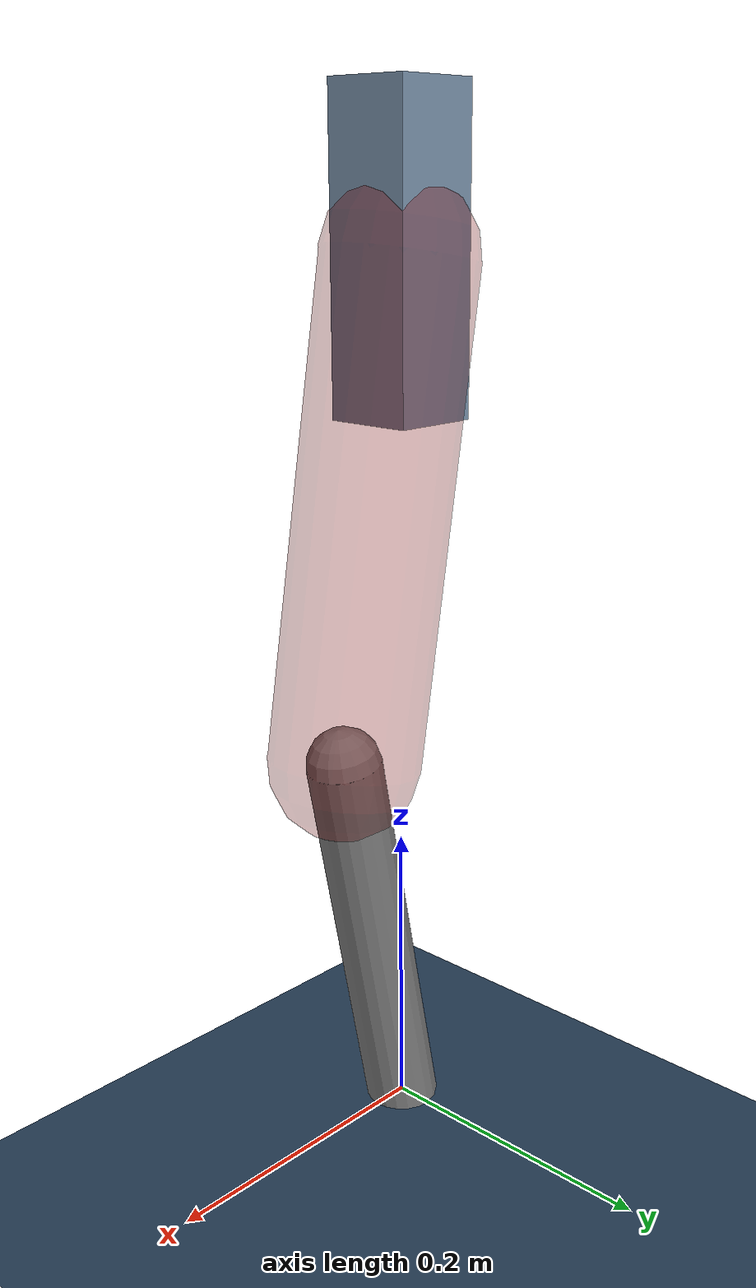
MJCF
<mujoco model="Hopper2D">
	<compiler inertiafromgeom="true" angle="radian" />
	<option timestep="0.001" integrator="implicit" cone="elliptic" solver="Newton" tolerance="1e-10" />

	<default>
		<geom contype="1" conaffinity="1" condim="3" friction="2 0.005 0.0001" solref="0.005 1" />
		<joint limited="true" damping="0.1" />
	</default>

	<asset>
		<texture name="skybox" type="skybox" builtin="gradient" rgb1=".4 .6 .8" rgb2="0 0 0" width="800" height="800" />
		<texture name="grid" type="2d" builtin="checker" rgb1=".1 .2 .3" rgb2=".2 .3 .4" width="300" height="300" mark="edge" markrgb=".2 .3 .4" />
		<material name="ground" texture="grid" texrepeat="1 1" texuniform="true" reflectance="0.1" />
		<material name="leg" rgba="0.5 0.6 0.7 1" />
	</asset>

	<worldbody>

		<geom name="floor" type="plane" size="5 5 0.25" material="ground" />

		<light directional="false" diffuse="0.8 0.8 0.8" specular="0.3 0.3 0.3" pos="0 0 2" dir="0 0 -1" />
		<light mode="targetbodycom" target="base" directional="false" diffuse="0.8 0.8 0.8" specular="0.3 0.3 0.3" pos="0 0 2" dir="0 0 -1" />

		<camera name="fixed" pos="0 -2 1" xyaxes="1 0 0 0 0 1" />
		<camera name="tracking" mode="trackcom" pos="0 -3 1" />

		<body name="root" pos="0 0 0.5858794527952029">
			<joint name="slide_x" type="slide" axis="1 0 0" range="-100 100" />
			<joint name="slide_z" type="slide" axis="0 0 1" range="0 10" />

			<body name="base" pos="0 0 0">
				<geom name="torso" type="box" size="0.03 0.03 0.1" mass="3.21" material="leg" />

				<body name="link1" pos="0 0 0" euler="0 1.4009547637781294 0">
					<joint type="hinge" axis="0 -1 0" pos="0 0 0" name="hinge1" limited="true" range="-3.14 3.14" stiffness="0" damping="0.1" />
					<geom name="thigh" type="capsule" fromto="0 0 0 0.32060929059913346 0 0" size="0.05" rgba="0.5 0 0 0.3" mass="1.0449060136775736" />

					<body name="link2" pos="0.32060929059913346 0 0" euler="0 0.3680020164360637 0">
						<joint type="hinge" axis="0 -1 0" pos="0 0 0" name="hinge2" limited="true" range="-3.14 3.14" stiffness="0" damping="0.1" />
						<geom name="shank" type="capsule" fromto="0 0 0 0.2752701621960695 0 0" size="0.025" mass="0.46324314597646254" />

					</body>
				</body>
			</body>
		</body>
	</worldbody>

	<actuator>
		<motor name="torque1" joint="hinge1" ctrlrange="-196.57612550189785 196.57612550189785" ctrllimited="true" gear="1" />
		<motor name="torque2" joint="hinge2" ctrlrange="-52.41236395948945 52.41236395948945" ctrllimited="true" gear="1" />
	</actuator>
</mujoco>
